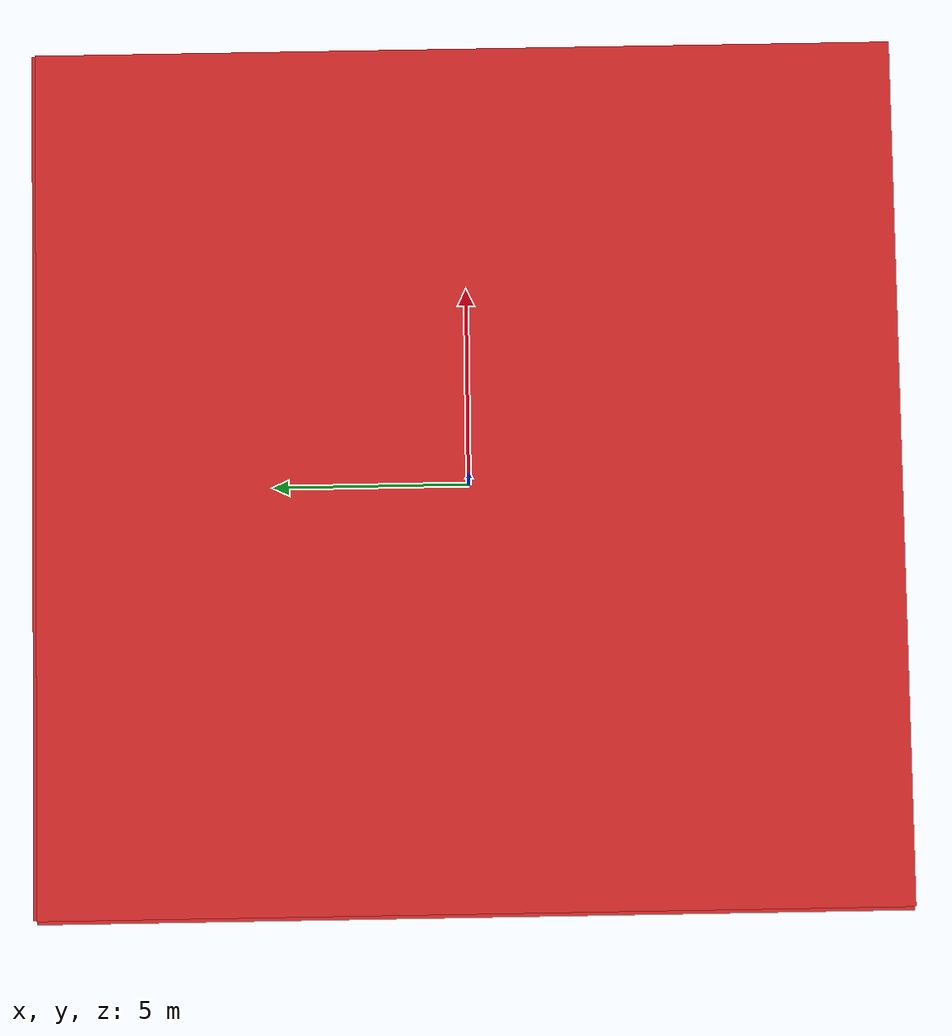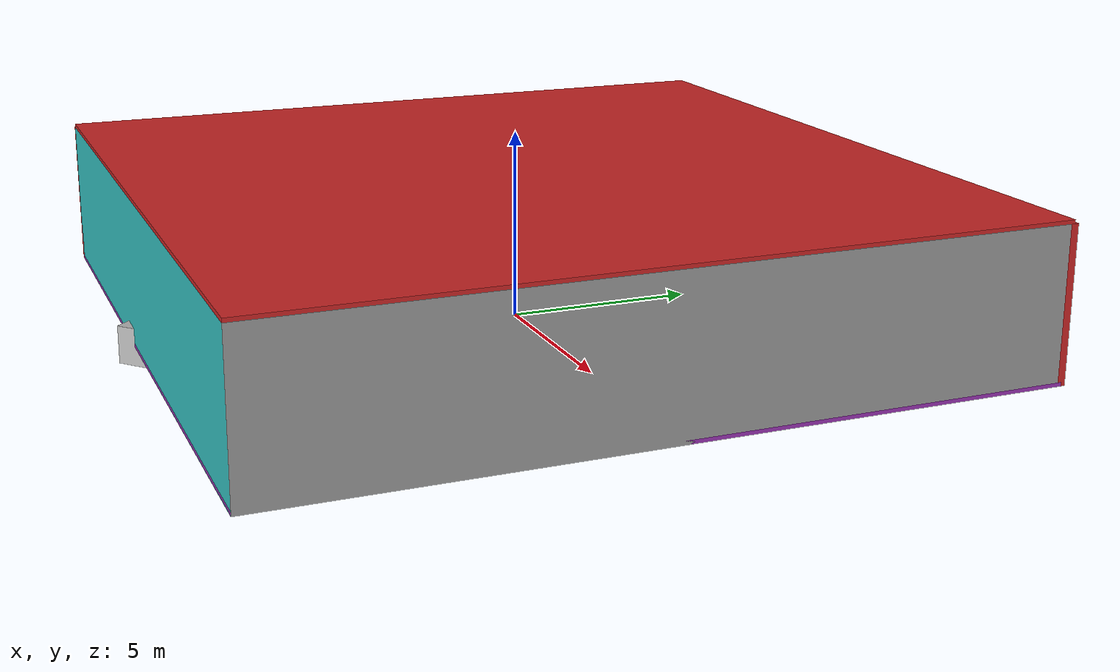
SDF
<sdf version="1.4">
 <world name="default">
  <physics type="ode">
   <max_step_size>0.001</max_step_size>
   <real_time_factor>1</real_time_factor>
   <real_time_update_rate>1000</real_time_update_rate>
   <gravity>0 0 -9.8</gravity>
  </physics>
  <scene><ambient>0.4 0.4 0.4 1</ambient><background>0.7 0.7 0.7 1</background><shadows>1</shadows></scene>
  <model name="Surrounding">
   <static>1</static>
   <link name="Ceiling">
    <collision name="Ceiling_Collision"><geometry><box><size>20 20 0.1</size></box></geometry></collision>
    <visual name="Ceiling_Visual">
     <geometry><box><size>20 20 0.1</size></box></geometry>
     <material>
      <script><uri>file://media/materials/scripts/gazebo.material</uri><name>Gazebo/RedGlow</name></script>
     </material>
    </visual>
    <pose>0 0 4.05 0 0 0</pose>
   </link>
   <link name="Wall_South">
    <collision name="Wall_South_Collision">
     <geometry><box><size>20 0 4</size></box></geometry>
     <pose>0 0 2 0 -0 0</pose>
    </collision>
    <visual name="Wall_South_Visual">
     <pose>0 0 2 0 -0 0</pose>
     <geometry><box><size>20 0 4</size></box></geometry>
     <material>
      <script>
       <uri>file://media/materials/scripts/gazebo.material</uri>
       <name>Gazebo/TurquoiseGlowOutline</name>
      </script>
     </material>
    </visual>
    <velocity_decay><linear>0</linear><angular>0</angular></velocity_decay>
    <pose>0 -10 0 0 -0 0</pose>
   </link>
   <link name="Wall_East">
    <collision name="Wall_21_Collision">
     <geometry><box><size>20 0 4</size></box></geometry>
     <pose>0 0 2 0 -0 0</pose>
    </collision>
    <visual name="Wall_21_Visual">
     <pose>0 0 2 0 -0 0</pose>
     <geometry><box><size>20 0 4</size></box></geometry>
     <material>
      <script><uri>file://media/materials/scripts/gazebo.material</uri><name>Gazebo/GreyGradientSky</name></script>
     </material>
    </visual>
    <velocity_decay><linear>0</linear><angular>0</angular></velocity_decay>
    <pose>10 0 0 0 -0 1.5708</pose>
   </link>
   <link name="Wall_North">
    <collision name="Wall_22_Collision">
     <geometry><box><size>20 0.2 4</size></box></geometry>
     <pose>0 0 2 0 -0 0</pose>
    </collision>
    <visual name="Wall_22_Visual">
     <pose>0 0 2 0 -0 0</pose>
     <geometry><box><size>20 0.2 4</size></box></geometry>
     <material>
      <script><uri>file://media/materials/scripts/gazebo.material</uri><name>Gazebo/Red</name></script>
     </material>
    </visual>
    <velocity_decay><linear>0</linear><angular>0</angular></velocity_decay>
    <pose>0 10 0 0 -0 0</pose>
   </link>
   <link name="Wall_West">
    <collision name="Wall_23_Collision">
     <geometry><box><size>20 0.2 4</size></box></geometry>
     <pose>0 0 2 0 -0 0</pose>
    </collision>
    <visual name="Wall_23_Visual">
     <pose>0 0 2 0 -0 0</pose>
     <geometry><box><size>20 0.2 4</size></box></geometry>
     <material>
      <script><uri>file://media/materials/scripts/gazebo.material</uri><name>Gazebo/Red</name></script>
     </material>
    </visual>
    <velocity_decay><linear>0</linear><angular>0</angular></velocity_decay>
    <pose>-10 0 0 0 0 -1.5708</pose>
   </link>
   <link name="Ground_link">
    <collision name="collision">
     <pose>0 0 .05 0 -0 0</pose>
     <geometry><box><size>20 20 0.1</size></box></geometry>
    </collision>
    <visual name="visual">
     <pose>0 0 .05 0 -0 0</pose>
     <geometry><box><size>20 20 0.1</size></box></geometry>
     <material>
      <script><uri>file://media/materials/scripts/gazebo.material</uri><name>Gazebo/PurpleGlow</name></script>
     </material>
    </visual>
   </link>
   <static>1</static>
  </model>
  <spherical_coordinates>
   <surface_model>EARTH_WGS84</surface_model>
   <latitude_deg>0</latitude_deg>
   <longitude_deg>0</longitude_deg>
   <elevation>0</elevation>
   <heading_deg>0</heading_deg>
  </spherical_coordinates>
  <light name="lightball_0" type="diffuse">
   <diffuse>0.8 0.8 0.8 1</diffuse>
   <specular>0.2 0.2 0.2 1</specular>
   <attenuation>
    <range>100</range>
    <constant>0.7</constant>
    <linear>0.01</linear>
    <quadratic>0.001</quadratic>
   </attenuation>
   <direction>-0.5 0.1 -0.9</direction>
   <pose>4.76858950011 -0.85673391891 1.47175836082 0 0 0</pose>
  </light>
  <light name="lightball_1" type="diffuse">
   <diffuse>0.8 0.8 0.8 1</diffuse>
   <specular>0.2 0.2 0.2 1</specular>
   <attenuation>
    <range>100</range>
    <constant>0.7</constant>
    <linear>0.01</linear>
    <quadratic>0.001</quadratic>
   </attenuation>
   <direction>-0.5 0.1 -0.9</direction>
   <pose>0.810551955013 4.31744309905 2.50945685745 0 0 0</pose>
  </light>
  <light name="lightball_2" type="diffuse">
   <diffuse>0.8 0.8 0.8 1</diffuse>
   <specular>0.2 0.2 0.2 1</specular>
   <attenuation>
    <range>100</range>
    <constant>0.7</constant>
    <linear>0.01</linear>
    <quadratic>0.001</quadratic>
   </attenuation>
   <direction>-0.5 0.1 -0.9</direction>
   <pose>4.29231464971 -2.11976115473 1.35522961322 0 0 0</pose>
  </light>
  <light name="lightball_3" type="diffuse">
   <diffuse>0.8 0.8 0.8 1</diffuse>
   <specular>0.2 0.2 0.2 1</specular>
   <attenuation>
    <range>100</range>
    <constant>0.7</constant>
    <linear>0.01</linear>
    <quadratic>0.001</quadratic>
   </attenuation>
   <direction>-0.5 0.1 -0.9</direction>
   <pose>-6.78080227368 -2.94629945483 3.00102743978 0 0 0</pose>
  </light>
  <light name="lightball_4" type="diffuse">
   <diffuse>0.8 0.8 0.8 1</diffuse>
   <specular>0.2 0.2 0.2 1</specular>
   <attenuation>
    <range>100</range>
    <constant>0.7</constant>
    <linear>0.01</linear>
    <quadratic>0.001</quadratic>
   </attenuation>
   <direction>-0.5 0.1 -0.9</direction>
   <pose>-5.80146771687 -8.44671610136 1.34790414245 0 0 0</pose>
  </light>
  <light name="lightball_5" type="diffuse">
   <diffuse>0.8 0.8 0.8 1</diffuse>
   <specular>0.2 0.2 0.2 1</specular>
   <attenuation>
    <range>100</range>
    <constant>0.7</constant>
    <linear>0.01</linear>
    <quadratic>0.001</quadratic>
   </attenuation>
   <direction>-0.5 0.1 -0.9</direction>
   <pose>-8.17346869124 5.91269925456 2.1258601897 0 0 0</pose>
  </light>
  <include><uri>model://cabinet</uri><pose>-7.0577193282 4.58501544753 0 0 0 2.03213942737</pose></include>
  <include>
   <uri>model://textured_shapes</uri>
   <pose>-2.38940654647 -8.5254264172 0 0 0 0.72532485512</pose>
  </include>
  <include>
   <uri>model://construction_cone</uri>
   <pose>-0.542743718987 7.05559089683 0 0 0 2.79834585297</pose>
  </include>
  <include><uri>model://cabinet</uri><pose>2.55143215835 -0.752089870421 0 0 0 2.30625230635</pose></include>
  <include>
   <uri>model://robocup_3Dsim_goal</uri>
   <pose>3.63536685046 4.51314202184 0 0 0 0.178448521127</pose>
  </include>
 </world>
</sdf>

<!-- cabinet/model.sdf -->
<sdf version="1.5">
  <model name="cabinet">
    <static>true</static>
    <link name="cabinet_bottom_plate">
      <inertial>
        <pose>0 0 -1 0 0 0</pose>
        <inertia>
          <ixx>2.050000</ixx>
          <ixy>0</ixy>
          <ixz>0</ixz>
          <iyy>2.050000</iyy>
          <iyz>0</iyz>
          <izz>2.050000</izz>
        </inertia>
        <mass>25.000000</mass>
      </inertial>
      <collision name="cabinet_bottom_plate_geom">
        <pose>0 0 0.010000 0 0 0</pose>
        <geometry>
          <box>
            <size>0.450000 0.450000 0.020000</size>
          </box>
        </geometry>
      </collision>
      <visual name="cabinet_bottom_plate_geom_visual">
        <pose>0 0 0.010000 0 0 0</pose>
        <geometry>
          <box>
            <size>0.450000 0.450000 0.020000</size>
          </box>
        </geometry>
        <material>
          <script>
            <uri>model://media/materials/scripts/gazebo.material</uri>
            <name>Gazebo/Wood</name>
          </script>
        </material>
      </visual>
      <collision name="cabinet_bottom_plate_geom_cabinet_back_plate">
        <pose>0.235000 0 0.510000 0 0 0</pose>
        <geometry>
          <box>
            <size>0.020000 0.450000 1.020000</size>
          </box>
        </geometry>
      </collision>
      <visual name="cabinet_bottom_plate_geom_cabinet_back_plate_visual">
        <pose>0.235000 0 0.510000 0 0 0</pose>
        <geometry>
          <box>
            <size>0.020000 0.450000 1.020000</size>
          </box>
        </geometry>
        <material>
          <script>
            <uri>model://media/materials/scripts/gazebo.material</uri>
            <name>Gazebo/Wood</name>
          </script>
        </material>
      </visual>
      <collision name="cabinet_bottom_plate_geom_cabinet_left_plate">
        <pose>0 0.235000 0.510000 0 0 0</pose>
        <geometry>
          <box>
            <size>0.450000 0.020000 1.020000</size>
          </box>
        </geometry>
      </collision>
      <visual name="cabinet_bottom_plate_geom_cabinet_left_plate_visual">
        <pose>0 0.235000 0.510000 0 0 0</pose>
        <geometry>
          <box>
            <size>0.450000 0.020000 1.020000</size>
          </box>
        </geometry>
        <material>
          <script>
            <uri>model://media/materials/scripts/gazebo.material</uri>
            <name>Gazebo/Wood</name>
          </script>
        </material>
      </visual>
      <collision name="cabinet_bottom_plate_geom_cabinet_middle_plate">
        <pose>0 0 0.510000 0 0 0</pose>
        <geometry>
          <box>
            <size>0.450000 0.450000 0.020000</size>
          </box>
        </geometry>
      </collision>
      <visual name="cabinet_bottom_plate_geom_cabinet_middle_plate_visual">
        <pose>0 0 0.510000 0 0 0</pose>
        <geometry>
          <box>
            <size>0.450000 0.450000 0.020000</size>
          </box>
        </geometry>
        <material>
          <script>
            <uri>model://media/materials/scripts/gazebo.material</uri>
            <name>Gazebo/Wood</name>
          </script>
        </material>
      </visual>
      <collision name="cabinet_bottom_plate_geom_cabinet_right_plate">
        <pose>0 -0.235000 0.510000 0 0 0</pose>
        <geometry>
          <box>
            <size>0.450000 0.020000 1.020000</size>
          </box>
        </geometry>
      </collision>
      <visual name="cabinet_bottom_plate_geom_cabinet_right_plate_visual">
        <pose>0 -0.235000 0.510000 0 0 0</pose>
        <geometry>
          <box>
            <size>0.450000 0.020000 1.020000</size>
          </box>
        </geometry>
        <material>
          <script>
            <uri>model://media/materials/scripts/gazebo.material</uri>
            <name>Gazebo/Wood</name>
          </script>
        </material>
      </visual>
      <collision name="cabinet_bottom_plate_geom_cabinet_top_plate">
        <pose>0 0 1.010000 0 0 0</pose>
        <geometry>
          <box>
            <size>0.450000 0.450000 0.020000</size>
          </box>
        </geometry>
      </collision>
      <visual name="cabinet_bottom_plate_geom_cabinet_top_plate_visual">
        <pose>0 0 1.010000 0 0 0</pose>
        <geometry>
          <box>
            <size>0.450000 0.450000 0.020000</size>
          </box>
        </geometry>
        <material>
          <script>
            <uri>model://media/materials/scripts/gazebo.material</uri>
            <name>Gazebo/Wood</name>
          </script>
        </material>
      </visual>
    </link>
  </model>
</sdf>

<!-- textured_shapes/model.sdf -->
<sdf version="1.6">
  <model name="textured_shapes">
    <pose>0 0 0.5 0 0 0</pose>
    <link name="box">
      <pose>0 -1.5 0 0 0 0</pose>
      <collision name="collision">
        <geometry>
          <box>
            <size>1 1 1</size>
          </box>
        </geometry>
      </collision>
      <visual name="visual">
        <geometry>
          <box>
            <size>1 1 1</size>
          </box>
        </geometry>
        <material>
          <script>
            <uri>model://../model_source/models/textured_shapes/materials/scripts</uri>
            <uri>model://../model_source/models/textured_shapes/materials/textures</uri>
            <name>TexturedShape/Squares</name>
          </script>
        </material>
      </visual>
    </link>
    <link name="sphere">
      <collision name="collision">
        <geometry>
          <sphere>
            <radius>0.5</radius>
          </sphere>
        </geometry>
      </collision>
      <visual name="visual">
        <geometry>
          <sphere>
            <radius>0.5</radius>
          </sphere>
        </geometry>
        <material>
          <script>
            <uri>model://../model_source/models/textured_shapes/materials/scripts</uri>
            <uri>model://../model_source/models/textured_shapes/materials/textures</uri>
            <name>TexturedShape/Squares</name>
          </script>
        </material>
      </visual>
    </link>
    <link name="cylinder">
      <pose>0 1.5 0 0 0 0</pose>
      <collision name="collision">
        <geometry>
          <cylinder>
            <radius>0.5</radius>
            <length>1</length>
          </cylinder>
        </geometry>
      </collision>
      <visual name="visual">
        <geometry>
          <cylinder>
            <radius>0.5</radius>
            <length>1</length>
          </cylinder>
        </geometry>
        <material>
          <script>
            <uri>model://../model_source/models/textured_shapes/materials/scripts</uri>
            <uri>model://../model_source/models/textured_shapes/materials/textures</uri>
            <name>TexturedShape/Squares</name>
          </script>
        </material>
      </visual>
    </link>
  </model>
</sdf>

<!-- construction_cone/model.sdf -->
<sdf version="1.5">
  <model name="Construction Cone">
    <link name="link">
      <collision name="collision">
        <geometry>
          <mesh>
            <scale>10 10 10</scale>
            <uri>file://isr-testbed/construction_cone/meshes/construction_cone.dae</uri>
          </mesh>
        </geometry>
      </collision>
      <visual name="visual">
        <geometry>
          <mesh>
            <scale>10 10 10</scale>
            <uri>file://isr-testbed/construction_cone/meshes/construction_cone.dae</uri>
          </mesh>
        </geometry>
      </visual>
    </link>
  </model>
</sdf>

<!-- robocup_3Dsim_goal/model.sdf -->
<sdf version="1.5">
  <model name="robocup_3d_goal">
    <static>true</static>
    <link name="left_post">
      <pose>0 1.05 0.45 0 0 0</pose>
      <collision name="collision">
        <geometry>
          <cylinder>
            <radius>0.05</radius>
            <length>0.9</length>
          </cylinder>
        </geometry>
      </collision>
      <visual name="visual">
        <geometry>
          <cylinder>
            <radius>0.05</radius>
            <length>0.9</length>
          </cylinder>
        </geometry>
        <material>
          <script>
            <uri>file://media/materials/scripts/gazebo.material</uri>
            <name>Gazebo/ZincYellow</name>
          </script>
        </material>
      </visual>
    </link>
    <link name="left_support_horiz_lower">
      <pose>0.30 1.05 0.01 0 0 0</pose>
      <collision name="collision">
        <geometry>
          <box>
            <size>0.50 0.02 0.02</size>
          </box>
        </geometry>
      </collision>
      <visual name="visual">
        <geometry>
          <box>
            <size>0.50 0.02 0.02</size>
          </box>
        </geometry>
        <material>
          <script>
            <uri>file://media/materials/scripts/gazebo.material</uri>
            <name>Gazebo/White</name>
          </script>
        </material>
      </visual>
    </link>
    <link name="left_support_horiz_upper">
      <pose>0.30 1.05 0.79 0 0 0</pose>
      <collision name="collision">
        <geometry>
          <box>
            <size>0.50 0.02 0.02</size>
          </box>
        </geometry>
      </collision>
      <visual name="visual">
        <geometry>
          <box>
            <size>0.50 0.02 0.02</size>
          </box>
        </geometry>
        <material>
          <script>
            <uri>file://media/materials/scripts/gazebo.material</uri>
            <name>Gazebo/White</name>
          </script>
        </material>
      </visual>
    </link>
    <link name="left_support_vertical">
      <pose>0.56 1.05 0.4 0 1.5708 0</pose>
      <collision name="collision">
        <geometry>
          <box>
            <size>0.80 0.02 0.02</size>
          </box>
        </geometry>
      </collision>
      <visual name="visual">
        <geometry>
          <box>
            <size>0.80 0.02 0.02</size>
          </box>
        </geometry>
        <material>
          <script>
            <uri>file://media/materials/scripts/gazebo.material</uri>
            <name>Gazebo/White</name>
          </script>
        </material>
      </visual>
    </link>
    <link name="right_support_horiz_lower">
      <pose>0.30 -1.05 0.01 0 0 0</pose>
      <collision name="collision">
        <geometry>
          <box>
            <size>0.50 0.02 0.02</size>
          </box>
        </geometry>
      </collision>
      <visual name="visual">
        <geometry>
          <box>
            <size>0.50 0.02 0.02</size>
          </box>
        </geometry>
        <material>
          <script>
            <uri>file://media/materials/scripts/gazebo.material</uri>
            <name>Gazebo/White</name>
          </script>
        </material>
      </visual>
    </link>
    <link name="right_support_horiz_upper">
      <pose>0.30 -1.05 0.79 0 0 0</pose>
      <collision name="collision">
        <geometry>
          <box>
            <size>0.50 0.02 0.02</size>
          </box>
        </geometry>
      </collision>
      <visual name="visual">
        <geometry>
          <box>
            <size>0.50 0.02 0.02</size>
          </box>
        </geometry>
        <material>
          <script>
            <uri>file://media/materials/scripts/gazebo.material</uri>
            <name>Gazebo/White</name>
          </script>
        </material>
      </visual>
    </link>
    <link name="right_support_vertical">
      <pose>0.56 -1.05 0.4 0 1.5708 0</pose>
      <collision name="collision">
        <geometry>
          <box>
            <size>0.80 0.02 0.02</size>
          </box>
        </geometry>
      </collision>
      <visual name="visual">
        <geometry>
          <box>
            <size>0.80 0.02 0.02</size>
          </box>
        </geometry>
        <material>
          <script>
            <uri>file://media/materials/scripts/gazebo.material</uri>
            <name>Gazebo/White</name>
          </script>
        </material>
      </visual>
    </link>
    <link name="center_support_horiz_lower">
      <pose>0.56 0 0.01 0 1.5708 0</pose>
      <collision name="collision">
        <geometry>
          <box>
            <size>0.02 2.08 0.02</size>
          </box>
        </geometry>
      </collision>
      <visual name="visual">
        <geometry>
          <box>
            <size>0.02 2.08 0.02</size>
          </box>
        </geometry>
        <material>
          <script>
            <uri>file://media/materials/scripts/gazebo.material</uri>
            <name>Gazebo/White</name>
          </script>
        </material>
      </visual>
    </link>
    <link name="center_support_horiz_upper">
      <pose>0.56 0 0.79 0 1.5708 0</pose>
      <collision name="collision">
        <geometry>
          <box>
            <size>0.02 2.08 0.02</size>
          </box>
        </geometry>
      </collision>
      <visual name="visual">
        <geometry>
          <box>
            <size>0.02 2.08 0.02</size>
          </box>
        </geometry>
        <material>
          <script>
            <uri>file://media/materials/scripts/gazebo.material</uri>
            <name>Gazebo/White</name>
          </script>
        </material>
      </visual>
    </link>
    <link name="right_post">
      <pose>0 -1.05 0.45 0 0 0</pose>
      <collision name="collision">
        <geometry>
          <cylinder>
            <radius>0.05</radius>
            <length>0.9</length>
          </cylinder>
        </geometry>
      </collision>
      <visual name="visual">
        <geometry>
          <cylinder>
            <radius>0.05</radius>
            <length>0.9</length>
          </cylinder>
        </geometry>
        <material>
          <script>
            <uri>file://media/materials/scripts/gazebo.material</uri>
            <name>Gazebo/ZincYellow</name>
          </script>
        </material>
      </visual>
    </link>
    <link name="crossbar">
      <pose>0 0 0.85 1.57 1.57 0</pose>
      <collision name="collision">
        <geometry>
          <cylinder>
            <radius>0.05</radius>
            <length>2.0</length>
          </cylinder>
        </geometry>
      </collision>
      <visual name="visual">
        <geometry>
          <cylinder>
            <radius>0.05</radius>
            <length>2.0</length>
          </cylinder>
        </geometry>
        <material>
          <script>
            <uri>file://media/materials/scripts/gazebo.material</uri>
            <name>Gazebo/ZincYellow</name>
          </script>
        </material>
      </visual>
    </link>
    <link name="center_net">
      <pose>0.56 0 0.40 0 0 0</pose>
      <collision name="collision">
        <geometry>
          <box>
            <size>0.01 2.1 0.80</size>
          </box>
        </geometry>
      </collision>
      <visual name="visual">
        <geometry>
          <box>
            <size>0.01 2.1 0.80</size>
          </box>
        </geometry>
        <material>
          <script>
            <uri>model://../model_source/models/robocup09_spl_field/materials/scripts/</uri>
            <uri>model://../model_source/models/robocup09_spl_field/materials/textures/</uri>
            <name>RoboCup/Net</name>
          </script>
        </material>
      </visual>
    </link>
    <link name="left_net">
      <pose>0.30 1.05 0.40 0 0 0</pose>
      <collision name="collision">
        <geometry>
          <box>
            <size>0.50 0.01 0.76</size>
          </box>
        </geometry>
      </collision>
      <visual name="visual">
        <geometry>
          <box>
            <size>0.50 0.01 0.76</size>
          </box>
        </geometry>
        <material>
          <script>
            <uri>model://../model_source/models/robocup09_spl_field/materials/scripts/</uri>
            <uri>model://../model_source/models/robocup09_spl_field/materials/textures/</uri>
            <name>RoboCup/Net</name>
          </script>
        </material>
      </visual>
    </link>
    <link name="right_net">
      <pose>0.30 -1.05 0.40 0 0 0</pose>
      <collision name="collision">
        <geometry>
          <box>
            <size>0.50 0.01 0.76</size>
          </box>
        </geometry>
      </collision>
      <visual name="visual">
        <geometry>
          <box>
            <size>0.50 0.01 0.76</size>
          </box>
        </geometry>
        <material>
          <script>
            <uri>model://../model_source/models/robocup09_spl_field/materials/scripts/</uri>
            <uri>model://../model_source/models/robocup09_spl_field/materials/textures/</uri>
            <name>RoboCup/Net</name>
          </script>
        </material>
      </visual>
    </link>
  </model>
</sdf>
